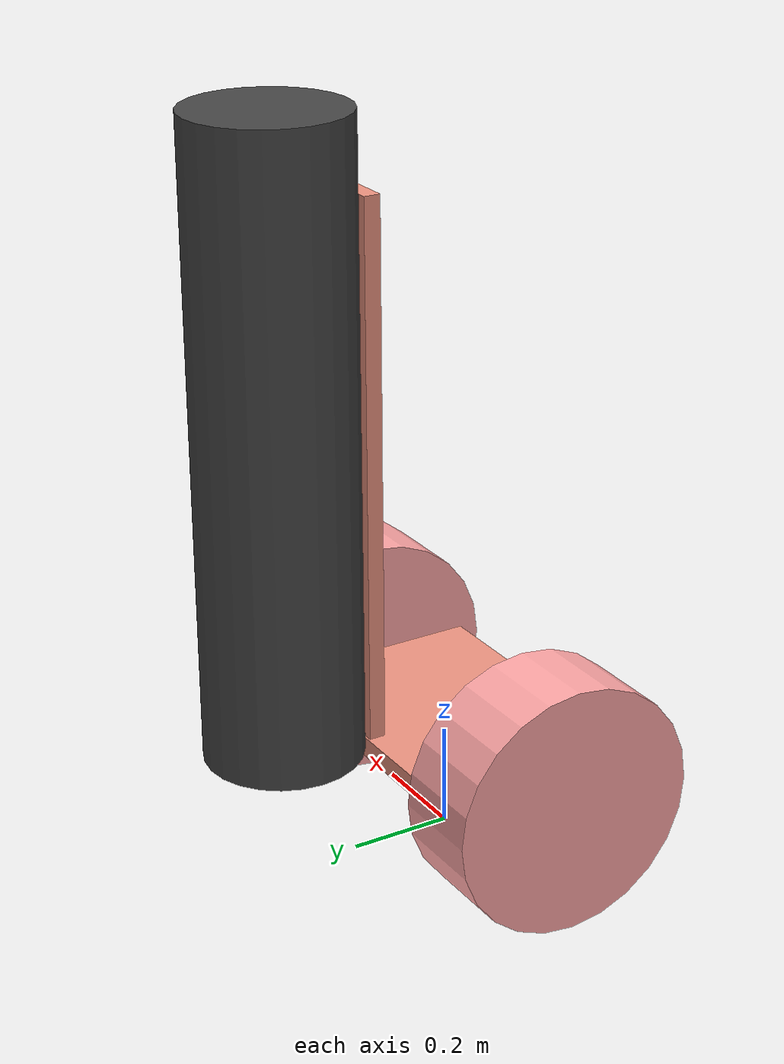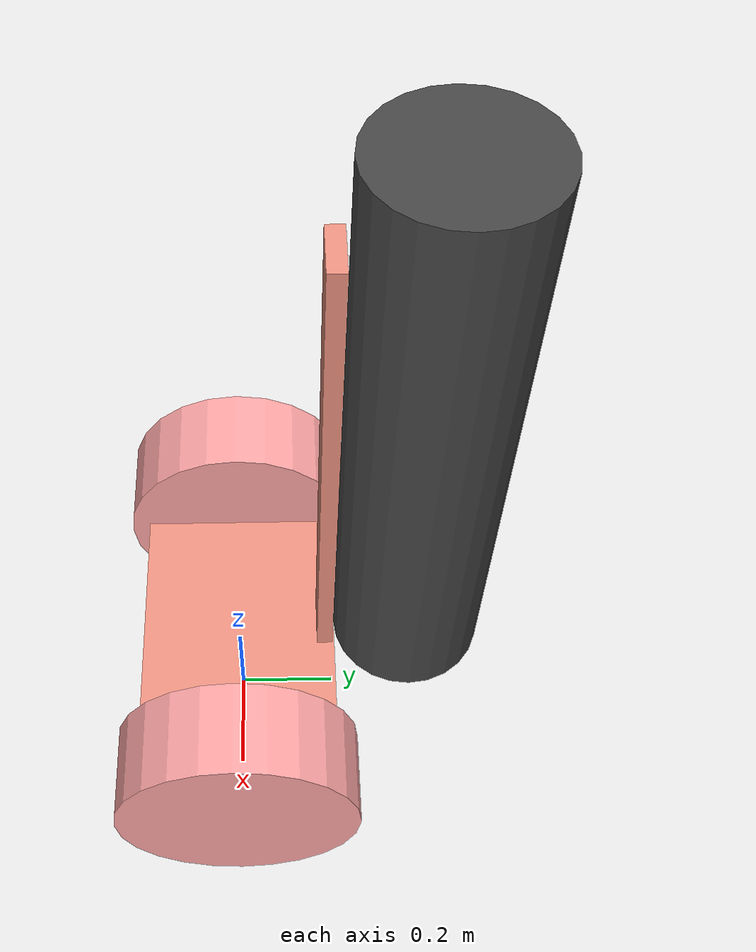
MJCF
<!--直径：48cm, 宽：18cm, 轴长：70cm, 车把杆长：104cm, 球包高：120cm-->
<mujoco model="balance">
    <compiler angle="radian"/>
    <size njmax="500" nconmax="100"/>
    <asset>
        <texture type="2d" name="wheel_texture" builtin="checker" mark="edge"
                 rgb1="1 1 1" rgb2="1 0.3 0.3"
                 markrgb="0.3 0.3 0.3" width="1024" height="1024"/>
        <material name="wheel_material" texture="wheel_texture" texuniform="true" texrepeat="20 20"/>
        <texture type="2d" name="body_texture" builtin="gradient" rgb1="0.9 0.3 0.5"
                 rgb2="0.95 0.85 0.5" width="512" height="512"/>
        <material name="body_material" texture="body_texture" texrepeat="4 2" shininess="0.3"/>
        <texture type="2d" name="bag_texture" builtin="gradient" rgb1="0.15 0.15 0.15"
                 rgb2="0.4 0.4 0.4" width="256" height="256"/>
        <material name="bag_material" texture="bag_texture" texrepeat="1 2" shininess="0.3"/>
    </asset>
    <option gravity="0 0 -9.81" viscosity="0.002"/>

    <worldbody>
        <!-- 车体基座，车轮中心高度0.24m -->
        <body name="segway" pos="0 0 0.24">
            <joint name="segway_free" type="free" damping="0.5"/>

            <!-- 轮轴杆（位于车轮中心高度） -->
            <body name="wheel_axle" pos="0 0 0">
                <inertial pos="0.0 -0.09 0.0" quat="0.707107 0 0 0.707107"
                          mass="40.489" diaginertia="0.87993 0.64149 0.31774"/>
                <geom type="box" size="0.35 0.20 0.02" material="body_material"/>
            </body>

            <!-- 车把杆：长104cm，底部从轮轴稍上方开始 -->
            <body name="pendulum" pos="0 0 0.02">
                <inertial pos="0.0 0.0 0.0" quat="0.707107 0 0 0.707107"
                          mass="10.48164" diaginertia="0.75267 0.672276 0.0894829"/>
                <!-- 扁长方体，尺寸：半宽0.031m，半厚0.031m，半高0.52m （总高1.04m，体积等同原圆柱） -->
                <geom type="box" size="0.051 0.016 0.52" pos="0 0.18 0.52" material="body_material"/>

                <!-- 高尔夫球包：高120cm，位于杆后方偏上 -->
                <body name="golf_bag" pos="0 0.35 0.6">
                    <inertial pos="0 0 0" mass="10.0"
                              diaginertia="1.8 1.8 0.225"/>
                    <geom type="cylinder" size="0.15 0.6" material="bag_material"/>
                </body>
            </body>

            <!-- 左轮：直径48cm，宽18cm，位置x=-0.35 -->
            <body name="l_wheel" pos="-0.35 0 0">
                <inertial pos="0 0 0" quat="0.5 0.5 -0.5 0.5"
                          mass="4.23004" diaginertia="0.01832 0.010662 0.0105854"/>
                <joint name="torso_l_wheel" type="hinge" pos="0 0 0" axis="-1 0 0" damping="0.05"/>
                <geom type="cylinder" size="0.24 0.09" quat="0.707107 0 0.707107 0"
                      material="wheel_material" contype="2" conaffinity="1" friction="2 1 0.8"/>
            </body>

            <!-- 右轮：直径48cm，宽18cm，位置x=0.35 -->
            <body name="r_wheel" pos="0.35 0 0">
                <inertial pos="0 0 0" quat="0.5 0.5 -0.5 0.5"
                          mass="4.23004" diaginertia="0.01832 0.010662 0.0105854"/>
                <joint name="torso_r_wheel" type="hinge" pos="0 0 0" axis="-1 0 0" damping="0.05"/>
                <geom type="cylinder" size="0.24 0.09" quat="0.707107 0 0.707107 0"
                      material="wheel_material" contype="2" conaffinity="1" friction="2 1 0.8"/>
            </body>
        </body>
    </worldbody>

    <actuator>
        <motor name="motor_l_wheel" joint="torso_l_wheel" gear="1" ctrllimited="true" ctrlrange="-800 800"/>
        <motor name="motor_r_wheel" joint="torso_r_wheel" gear="1" ctrllimited="true" ctrlrange="-800 800"/>
    </actuator>
</mujoco>
